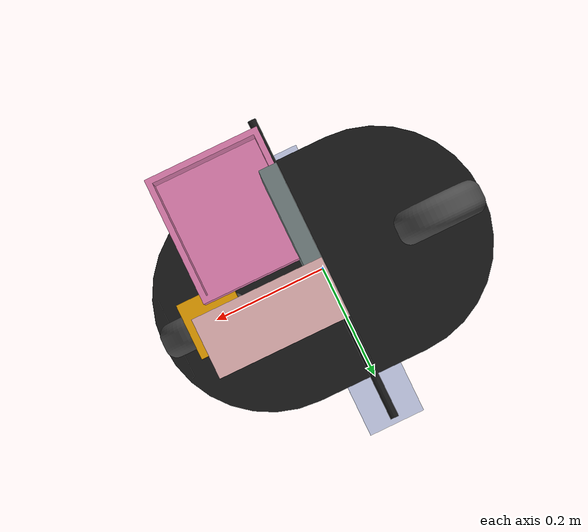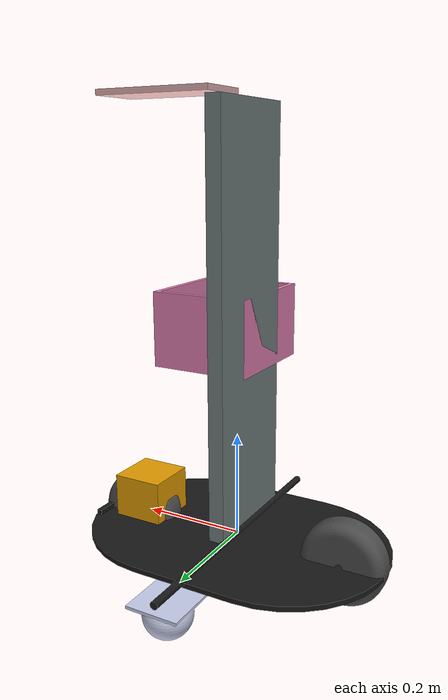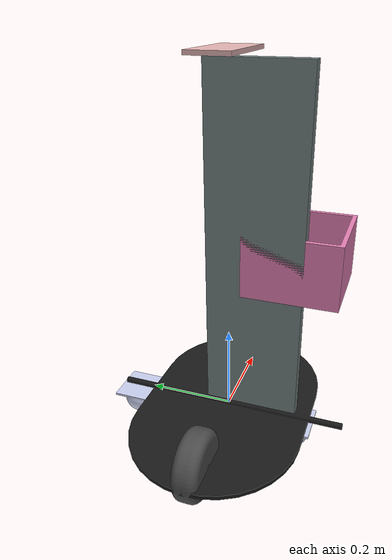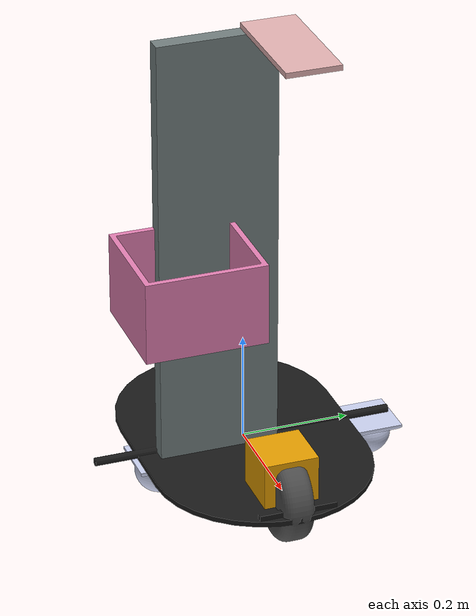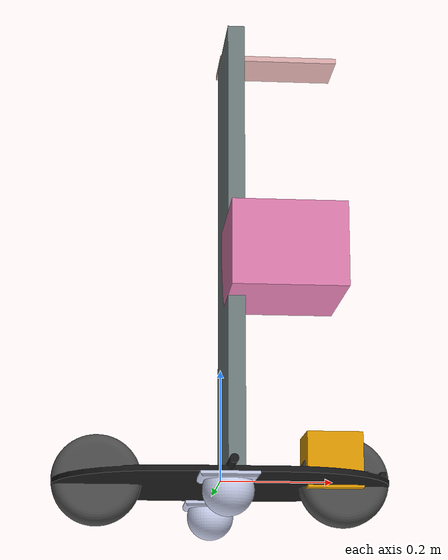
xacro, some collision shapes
<?xml version="1.0" ?>
<robot xmlns:xacro="http://www.ros.org/wiki/xacro"
 	     xmlns:sensor="http://playerstage.sourceforge.net/gazebo/xmlschema/#sensor"
    	 xmlns:controller="http://playerstage.sourceforge.net/gazebo/xmlschema/#controller"
    	 xmlns:interface="http://playerstage.sourceforge.net/gazebo/xmlschema/#interface"
  name="deliver_rb">

  <!-- LASER ATTACHMENT -->
  <xacro:include filename="$(find deliver_rb)/urdf/hokuyo.xacro"/>

  <xacro:hokuyo_sensor parent="base_link">
	</xacro:hokuyo_sensor>

  <!-- Import all Gazebo-customization elements, including Gazebo colors, sensors, controller -->
  <xacro:include filename="$(find deliver_rb)/urdf/plug_in.gazebo" />

  <xacro:property name="length_wheel" value="0.06" />
	<xacro:property name="radius_wheel" value="0.08" />
	<xacro:property name="mass_wheel" value="1.5" />
	<xacro:property name="distance_2wheels" value="0.5" />

	<xacro:property name="radius_base" value="0.6" />
	<xacro:property name="length_base" value="0.02" />
	<xacro:property name="mass_base" value="8" />

<!-- inertia for 3 popular shape -->
  <xacro:macro name="default_inertia" params="mass">
    <inertia>
      <mass value="${mass}" />
      <inertia
        ixx="1.0" ixy="0.0" ixz="0.0"
        iyy="1.0" iyz="0.0"
        izz="1.0" />
    </inertia>
	</xacro:macro>

	<xacro:macro name="cylinder_inertia" params="m r h">
		<inertia  ixx="${m*(3*r*r+h*h)/12}" ixy = "0" ixz = "0"
	    		iyy="${m*(3*r*r+h*h)/12}" iyz = "0"
	    		izz="${m*r*r/2}"
  		/>
	</xacro:macro>

	<xacro:macro name="sphere_inertia" params="m r">
		<inertia
			ixx="${2*m*r*r/5}" ixy = "0" ixz = "0"
		    	iyy="${2*m*r*r/5}" iyz = "0"
		    	izz="${2*m*r*r/5}"
		/>
	</xacro:macro>

<!-- inertia for 3 popular shape -->

  <link
    name="base_link">
    <inertial>
      <origin
        xyz="0 0 0"
        rpy="0 0 0" />
      <mass
        value="${mass_base}" />
      <inertia
        ixx="0.050269"
        ixy="-2.0827E-19"
        ixz="4.6001E-20"
        iyy="0.025394"
        iyz="-3.8944E-05"
        izz="0.075619" />
    </inertial>
    <visual>
      <origin
        xyz="0 0 0"
        rpy="0 0 0" />
      <geometry>
        <mesh
          filename="package://deliver_rb/meshes/base_link.STL" />
      </geometry>
      <material
        name="">
        <color
          rgba="0.1 0.1 0.1 1" />
      </material>
    </visual>
    <collision>
      <origin
        xyz="0 0 0"
        rpy="0 0 0" />
      <geometry>
        <mesh
          filename="package://deliver_rb/meshes/base_link.STL" />
      </geometry>
    </collision>
  </link>

  <link
    name="right_wheel">
    <inertial>
      <origin
        xyz="0.03 -3.4816E-18 -2.1002E-18"
        rpy="0 0 0" />
      <mass
        value="1.1143" />
      <inertia
        ixx="0.0033919"
        ixy="-5.9133E-20"
        ixz="2.0016E-20"
        iyy="0.0020008"
        iyz="-6.9002E-20"
        izz="0.0020008" />
    </inertial>
    <visual>
      <origin
        xyz="0 0 0"
        rpy="0 0 0" />
      <geometry>
        <mesh
          filename="package://deliver_rb/meshes/right_wheel.STL" />
      </geometry>
      <material
        name="">
        <color
          rgba="0.3 0.3 0.3 1" />
      </material>
    </visual>
    <collision>
      <origin
        xyz="0 0 0"
        rpy="0 0 0" />
      <geometry>
        <mesh
          filename="package://deliver_rb/meshes/right_wheel.STL" />
      </geometry>
    </collision>
  </link>
  <joint
    name="base_right_join"
    type="continuous">
    <origin
      xyz="0.22 0 0"
      rpy="0 0 0" />
    <parent
      link="base_link" />
    <child
      link="right_wheel" />
    <axis
      xyz="1 0 0" />
  </joint>
  <link
    name="left_wheel">
    <inertial>
      <origin
        xyz="-0.03 5.6191E-18 -8.8863E-19"
        rpy="0 0 0" />
      <mass
        value="1.1143" />
      <inertia
        ixx="0.0033919"
        ixy="-2.2094E-20"
        ixz="7.1532E-21"
        iyy="0.0020008"
        iyz="-6.0621E-20"
        izz="0.0020008" />
    </inertial>
    <visual>
      <origin
        xyz="0 0 0"
        rpy="0 0 0" />
      <geometry>
        <mesh
          filename="package://deliver_rb/meshes/left_wheel.STL" />
      </geometry>
      <material
        name="">
        <color
          rgba="0.3 0.3 0.3 1" />
      </material>
    </visual>
    <collision>
      <origin
        xyz="0 0 0"
        rpy="0 0 0" />
      <geometry>
        <mesh
          filename="package://deliver_rb/meshes/left_wheel.STL" />
      </geometry>
    </collision>
  </link>
  <joint
    name="base_left_wheel"
    type="continuous">
    <origin
      xyz="-0.22 0 0"
      rpy="0 0 0" />
    <parent
      link="base_link" />
    <child
      link="left_wheel" />
    <axis
      xyz="1 0 0" />
  </joint>
  <link
    name="pole">
    <inertial>
      <origin
        xyz="8.123E-17 0.015 0.4"
        rpy="0 0 0" />
      <mass
        value="5.28" />
      <inertia
        ixx="0.282"
        ixy="-2.4924E-19"
        ixz="-6.3607E-18"
        iyy="0.3029"
        iyz="-4.6485E-19"
        izz="0.021692" />
    </inertial>
    <visual>
      <origin
        xyz="0 0 0"
        rpy="0 0 0" />
      <geometry>
        <mesh
          filename="package://deliver_rb/meshes/pole.STL" />
      </geometry>
      <material
        name="">
        <color
          rgba="0.45 0.5 0.5 1" />
      </material>
    </visual>
    <collision>
      <origin
        xyz="0 0 0"
        rpy="0 0 0" />
      <geometry>
        <mesh
          filename="package://deliver_rb/meshes/pole.STL" />
      </geometry>
    </collision>
  </link>
  <joint
    name="base_pole_join"
    type="fixed">
    <origin
      xyz="0 -0.0549999999999999 0"
      rpy="0 0 0" />
    <parent
      link="base_link" />
    <child
      link="pole" />
    <axis
      xyz="0 0 0" />
  </joint>
  <link
    name="free_forward">
    <inertial>
      <origin
        xyz="5.8055E-17 0 -0.02656"
        rpy="0 0 0" />
      <mass
        value="0.36748" />
      <inertia
        ixx="0.00030896"
        ixy="9.7335E-21"
        ixz="-1.7523E-21"
        iyy="0.00030896"
        iyz="1.8168E-20"
        izz="0.00037749" />
    </inertial>
    <visual>
      <origin
        xyz="0 0 0"
        rpy="0 0 0" />
      <geometry>
        <mesh
          filename="package://deliver_rb/meshes/free_forward.STL" />
      </geometry>
      <material
        name="">
        <color
          rgba="0.79216 0.81961 0.93333 1" />
      </material>
    </visual>
    <collision>
      <origin
        xyz="0 0 0"
        rpy="0 0 0" />
      <geometry>
        <mesh
          filename="package://deliver_rb/meshes/free_forward.STL" />
      </geometry>
    </collision>
  </link>
  <joint
    name="pole_ff_join"
    type="fixed">
    <origin
      xyz="0 0.24 -0.01"
      rpy="0 0 0" />
    <parent
      link="base_link" />
    <axis
      xyz="1 0 0" />
    <child
      link="free_forward" />
    <axis
      xyz="0 0 0" />
  </joint>
  <link
    name="free_backward">
    <inertial>
      <origin
        xyz="8.23584312932801E-19 -2.77555756156289E-17 -0.0265597216130682"
        rpy="0 0 0" />
      <mass
        value="0.367480429154608" />
      <inertia
        ixx="0.000308959164383823"
        ixy="-3.20932602732956E-20"
        ixz="6.13034352708779E-21"
        iyy="0.000308959164383823"
        iyz="-4.97822992799711E-21"
        izz="0.000377486723963042" />
    </inertial>
    <visual>
      <origin
        xyz="0 0 0"
        rpy="0 0 0" />
      <geometry>
        <mesh
          filename="package://deliver_rb/meshes/free_backward.STL" />
      </geometry>
      <material
        name="">
        <color
          rgba="0.792156862745098 0.819607843137255 0.933333333333333 1" />
      </material>
    </visual>
    <collision>
      <origin
        xyz="0 0 0"
        rpy="0 0 0" />
      <geometry>
        <mesh
          filename="package://deliver_rb/meshes/free_backward.STL" />
      </geometry>
    </collision>
  </link>
  <joint
    name="pole_fb_join"
    type="fixed">
    <origin
      xyz="0 -0.16 -0.01"
      rpy="0 0 0" />
    <parent
      link="base_link" />
    <axis
      xyz="1 0 0" />
    <child
      link="free_backward" />
    <axis
      xyz="0 0 0" />
  </joint>
  <link
    name="basket">
    <inertial>
      <origin
        xyz="7.2301E-17 0.1 0.058846"
        rpy="0 0 0" />
      <mass
        value="1.56" />
      <inertia
        ixx="0.012002"
        ixy="-1.8494E-20"
        ixz="-8.8287E-19"
        iyy="0.01343"
        iyz="-2.0716E-19"
        izz="0.018212" />
    </inertial>
    <visual>
      <origin
        xyz="0 0 0"
        rpy="0 0 0" />
      <geometry>
        <mesh
          filename="package://deliver_rb/meshes/basket.STL" />
      </geometry>
      <material
        name="">
        <color
          rgba="0.89 0.5 0.7 1" />
      </material>
    </visual>
    <collision>
      <origin
        xyz="0 0 0"
        rpy="0 0 0" />
      <geometry>
        <mesh
          filename="package://deliver_rb/meshes/basket.STL" />
      </geometry>
    </collision>
  </link>
  <joint
    name="pole_basket_join"
    type="fixed">
    <origin
      xyz="0 0.03 0.3"
      rpy="0 0 0" />
    <parent
      link="pole" />
    <child
      link="basket" />
    <axis
      xyz="0 0 0" />
  </joint>
  <link
    name="hat">
    <inertial>
      <origin
        xyz="9.6903E-17 0 -0.005"
        rpy="0 0 0" />
      <mass
        value="0.21914" />
      <inertia
        ixx="0.0001832"
        ixy="-2.1741E-37"
        ixz="-6.8081E-22"
        iyy="0.00087919"
        iyz="-1.3062E-21"
        izz="0.0010587" />
    </inertial>
    <visual>
      <origin
        xyz="0 0 0"
        rpy="0 0 0" />
      <geometry>
        <mesh
          filename="package://deliver_rb/meshes/hat.STL" />
      </geometry>
      <material
        name="">
        <color
          rgba="0.89 0.7 0.7 1" />
      </material>
    </visual>
    <collision>
      <origin
        xyz="0 0 0"
        rpy="0 0 0" />
      <geometry>
        <mesh
          filename="package://deliver_rb/meshes/hat.STL" />
      </geometry>
    </collision>
  </link>
  <joint
    name="basket_hat_join"
    type="fixed">
    <origin
      xyz="0 0.0200000000000001 0.51"
      rpy="0 0 0" />
    <parent
      link="basket" />
    <child
      link="hat" />
    <axis
      xyz="0 0 0" />
  </joint>

  <!-- Hokuyo Laser -->
  <!-- CPU Lidar join-->

</robot>

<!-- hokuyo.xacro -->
<robot name="hokuyo_sensor" xmlns:xacro="http://www.ros.org/wiki/xacro">

 <xacro:macro name="hokuyo_sensor" params="parent">
     <link name="laser">
   <collision>
     <origin xyz="0 0 0" rpy="0 0 0"/>
     <geometry>
        <box size="0.1 0.1 0.1"/>
     </geometry>
   </collision>
   <visual>
     <origin xyz="0 0 0" rpy="0 0 0"/>
     <geometry>
       <mesh filename="package://deliver_rb/meshes/hokuyo.dae"/>
     </geometry>
   </visual>
   <inertial>
     <mass value="1e-5" />
     <origin xyz="0 0 0" rpy="0 0 0"/>
     <inertia ixx="1e-6" ixy="0" ixz="0" iyy="1e-6" iyz="0" izz="1e-6" />
   </inertial>
 </link>
 <joint name="laser_joint" type="fixed">
   <axis xyz="0 0 0" />
   <origin xyz="0.2 0.0 0.035" rpy="0 0 0"/>
   <parent link="${parent}"/>
   <child link="laser"/>
 </joint>
 </xacro:macro>

  </robot>
